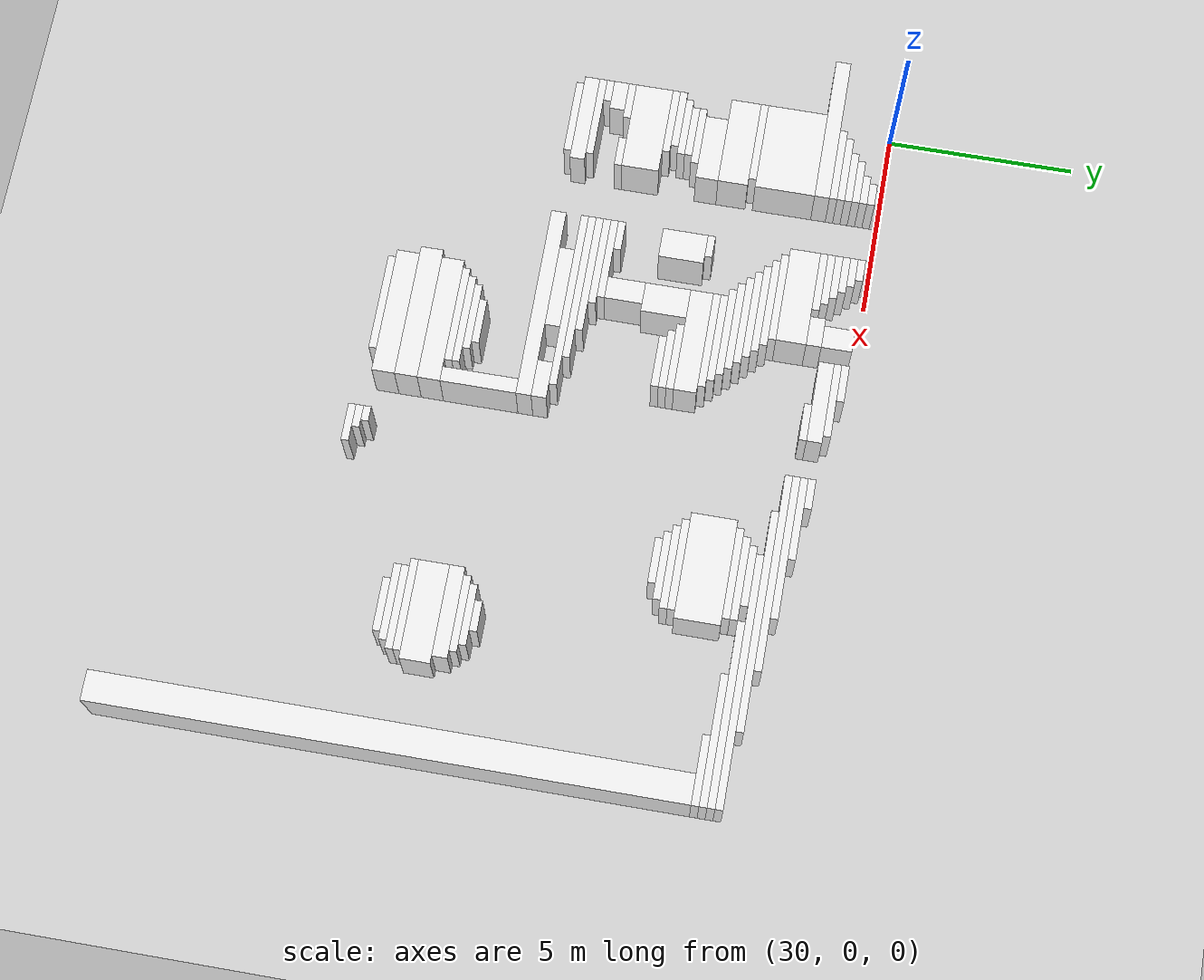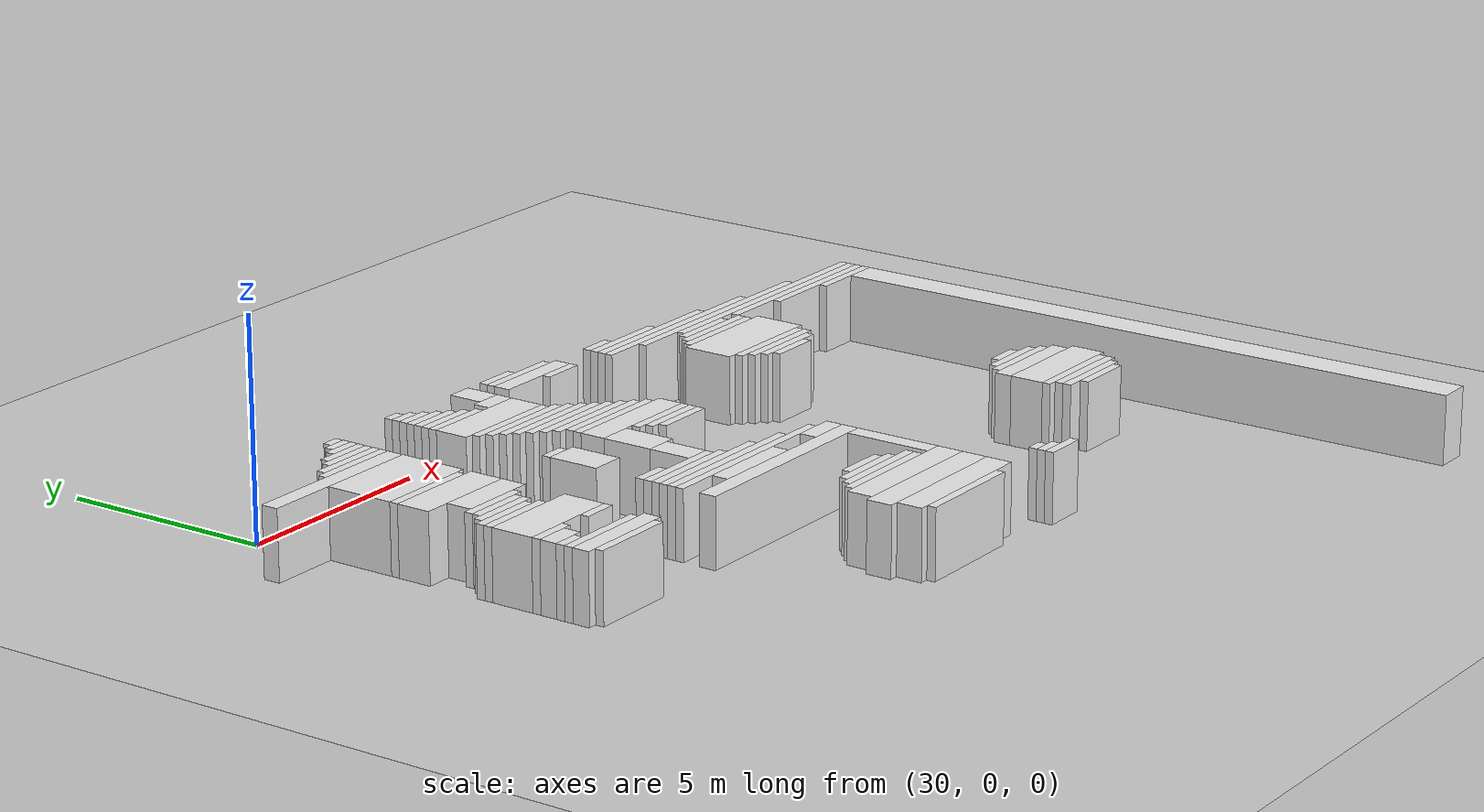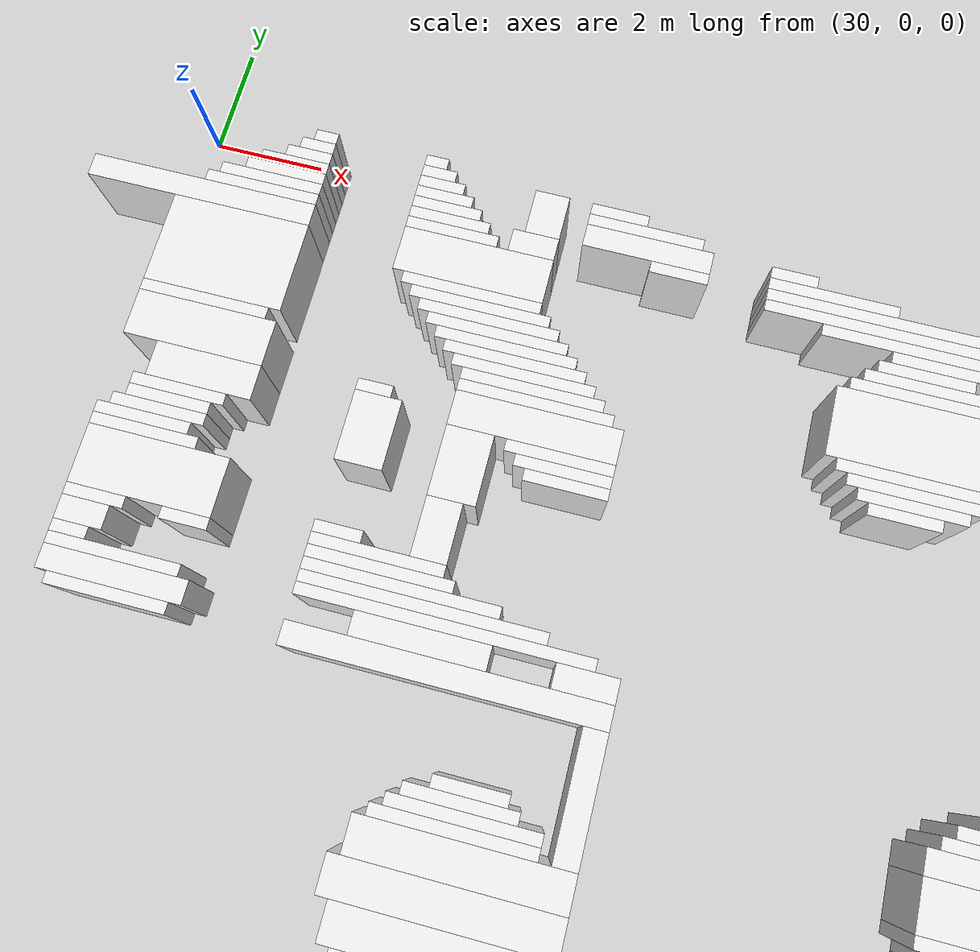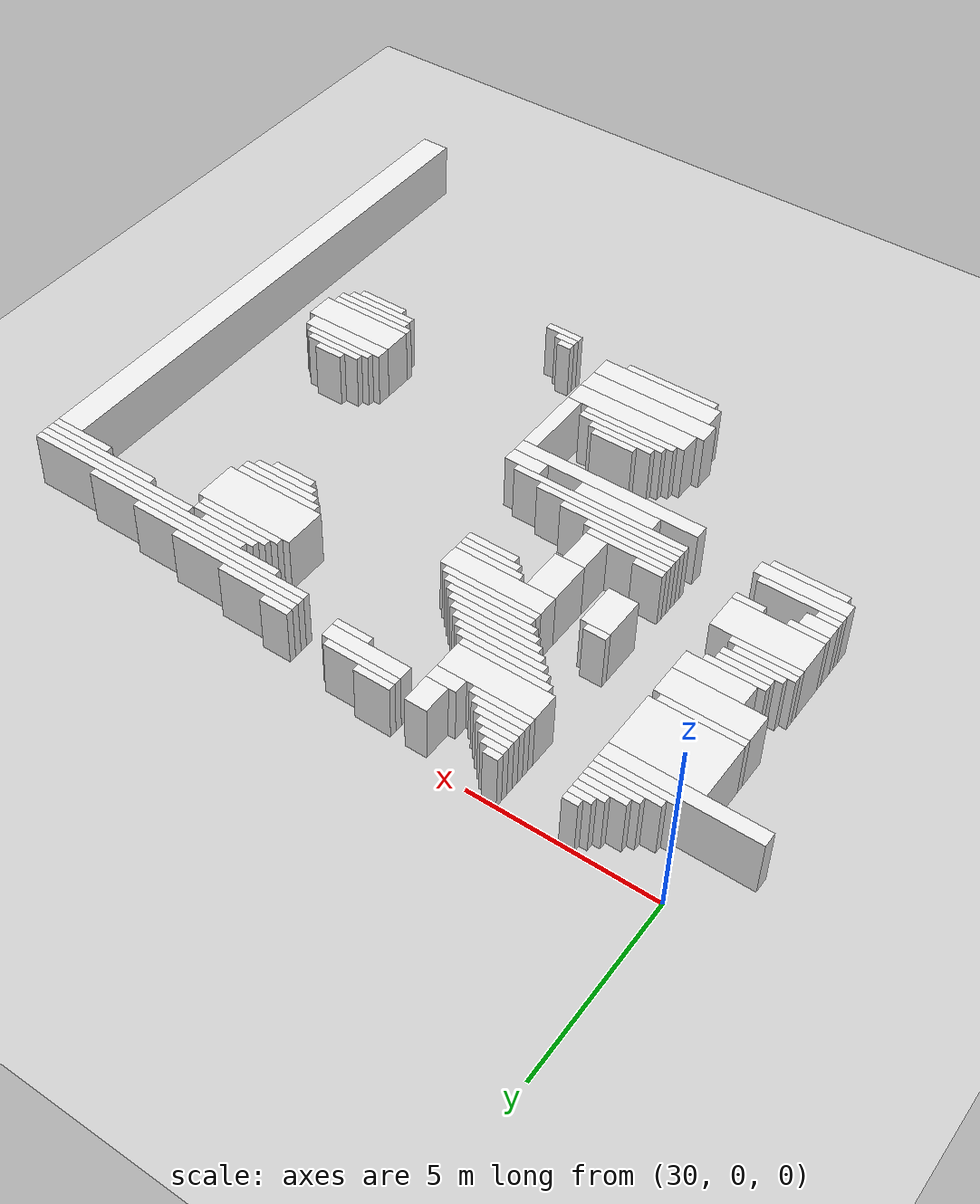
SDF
<sdf version="1.7">
 <world name="default">
  <model name="ground_plane">
   <static>1</static>
   <link name="link">
    <collision name="collision">
     <geometry><plane><normal>0 0 1</normal><size>120 120</size></plane></geometry>
    </collision>
    <visual name="visual">
     <geometry><plane><normal>0 0 1</normal><size>120 120</size></plane></geometry>
     <material>
      <script><uri>file://media/materials/scripts/gazebo.material</uri><name>Gazebo/Grey</name></script>
     </material>
    </visual>
   </link>
  </model>
  <model name="random_complex_02_model">
   <static>1</static>
   <link name="obs_1978">
    <pose>32.4000 -0.1000 0.8000 0 0 0</pose>
    <collision name="obs_1978_col"><geometry><box><size>0.4000 0.2000 1.6000</size></box></geometry></collision>
    <visual name="obs_1978_vis">
     <geometry><box><size>0.4000 0.2000 1.6000</size></box></geometry>
     <material>
      <script><uri>file://media/materials/scripts/gazebo.material</uri><name>Gazebo/White</name></script>
     </material>
    </visual>
   </link>
   <link name="obs_1979">
    <pose>34.4000 -0.1000 0.8000 0 0 0</pose>
    <collision name="obs_1979_col"><geometry><box><size>0.4000 0.2000 1.6000</size></box></geometry></collision>
    <visual name="obs_1979_vis">
     <geometry><box><size>0.4000 0.2000 1.6000</size></box></geometry>
     <material>
      <script><uri>file://media/materials/scripts/gazebo.material</uri><name>Gazebo/White</name></script>
     </material>
    </visual>
   </link>
   <link name="obs_1985">
    <pose>32.3000 -0.3000 0.8000 0 0 0</pose>
    <collision name="obs_1985_col"><geometry><box><size>0.6000 0.2000 1.6000</size></box></geometry></collision>
    <visual name="obs_1985_vis">
     <geometry><box><size>0.6000 0.2000 1.6000</size></box></geometry>
     <material>
      <script><uri>file://media/materials/scripts/gazebo.material</uri><name>Gazebo/White</name></script>
     </material>
    </visual>
   </link>
   <link name="obs_1986">
    <pose>34.5000 -0.3000 0.8000 0 0 0</pose>
    <collision name="obs_1986_col"><geometry><box><size>0.6000 0.2000 1.6000</size></box></geometry></collision>
    <visual name="obs_1986_vis">
     <geometry><box><size>0.6000 0.2000 1.6000</size></box></geometry>
     <material>
      <script><uri>file://media/materials/scripts/gazebo.material</uri><name>Gazebo/White</name></script>
     </material>
    </visual>
   </link>
   <link name="obs_1987">
    <pose>37.7000 -0.3000 0.8000 0 0 0</pose>
    <collision name="obs_1987_col"><geometry><box><size>1.0000 0.2000 1.6000</size></box></geometry></collision>
    <visual name="obs_1987_vis">
     <geometry><box><size>1.0000 0.2000 1.6000</size></box></geometry>
     <material>
      <script><uri>file://media/materials/scripts/gazebo.material</uri><name>Gazebo/White</name></script>
     </material>
    </visual>
   </link>
   <link name="obs_1992">
    <pose>32.2000 -0.5000 0.8000 0 0 0</pose>
    <collision name="obs_1992_col"><geometry><box><size>0.8000 0.2000 1.6000</size></box></geometry></collision>
    <visual name="obs_1992_vis">
     <geometry><box><size>0.8000 0.2000 1.6000</size></box></geometry>
     <material>
      <script><uri>file://media/materials/scripts/gazebo.material</uri><name>Gazebo/White</name></script>
     </material>
    </visual>
   </link>
   <link name="obs_1993">
    <pose>34.6000 -0.5000 0.8000 0 0 0</pose>
    <collision name="obs_1993_col"><geometry><box><size>0.8000 0.2000 1.6000</size></box></geometry></collision>
    <visual name="obs_1993_vis">
     <geometry><box><size>0.8000 0.2000 1.6000</size></box></geometry>
     <material>
      <script><uri>file://media/materials/scripts/gazebo.material</uri><name>Gazebo/White</name></script>
     </material>
    </visual>
   </link>
   <link name="obs_1994">
    <pose>38.2000 -0.5000 0.8000 0 0 0</pose>
    <collision name="obs_1994_col"><geometry><box><size>2.0000 0.2000 1.6000</size></box></geometry></collision>
    <visual name="obs_1994_vis">
     <geometry><box><size>2.0000 0.2000 1.6000</size></box></geometry>
     <material>
      <script><uri>file://media/materials/scripts/gazebo.material</uri><name>Gazebo/White</name></script>
     </material>
    </visual>
   </link>
   <link name="obs_2000">
    <pose>32.0000 -0.7000 0.8000 0 0 0</pose>
    <collision name="obs_2000_col"><geometry><box><size>1.2000 0.2000 1.6000</size></box></geometry></collision>
    <visual name="obs_2000_vis">
     <geometry><box><size>1.2000 0.2000 1.6000</size></box></geometry>
     <material>
      <script><uri>file://media/materials/scripts/gazebo.material</uri><name>Gazebo/White</name></script>
     </material>
    </visual>
   </link>
   <link name="obs_2001">
    <pose>34.7000 -0.7000 0.8000 0 0 0</pose>
    <collision name="obs_2001_col"><geometry><box><size>1.0000 0.2000 1.6000</size></box></geometry></collision>
    <visual name="obs_2001_vis">
     <geometry><box><size>1.0000 0.2000 1.6000</size></box></geometry>
     <material>
      <script><uri>file://media/materials/scripts/gazebo.material</uri><name>Gazebo/White</name></script>
     </material>
    </visual>
   </link>
   <link name="obs_2002">
    <pose>40.8000 -0.7000 0.8000 0 0 0</pose>
    <collision name="obs_2002_col"><geometry><box><size>0.8000 0.2000 1.6000</size></box></geometry></collision>
    <visual name="obs_2002_vis">
     <geometry><box><size>0.8000 0.2000 1.6000</size></box></geometry>
     <material>
      <script><uri>file://media/materials/scripts/gazebo.material</uri><name>Gazebo/White</name></script>
     </material>
    </visual>
   </link>
   <link name="obs_2005">
    <pose>36.5000 -0.6000 0.8000 0 0 0</pose>
    <collision name="obs_2005_col"><geometry><box><size>0.6000 0.8000 1.6000</size></box></geometry></collision>
    <visual name="obs_2005_vis">
     <geometry><box><size>0.6000 0.8000 1.6000</size></box></geometry>
     <material>
      <script><uri>file://media/materials/scripts/gazebo.material</uri><name>Gazebo/White</name></script>
     </material>
    </visual>
   </link>
   <link name="obs_2006">
    <pose>38.3000 -0.8000 0.8000 0 0 0</pose>
    <collision name="obs_2006_col"><geometry><box><size>2.2000 0.4000 1.6000</size></box></geometry></collision>
    <visual name="obs_2006_vis">
     <geometry><box><size>2.2000 0.4000 1.6000</size></box></geometry>
     <material>
      <script><uri>file://media/materials/scripts/gazebo.material</uri><name>Gazebo/White</name></script>
     </material>
    </visual>
   </link>
   <link name="obs_2012">
    <pose>31.9000 -0.9000 0.8000 0 0 0</pose>
    <collision name="obs_2012_col"><geometry><box><size>1.4000 0.2000 1.6000</size></box></geometry></collision>
    <visual name="obs_2012_vis">
     <geometry><box><size>1.4000 0.2000 1.6000</size></box></geometry>
     <material>
      <script><uri>file://media/materials/scripts/gazebo.material</uri><name>Gazebo/White</name></script>
     </material>
    </visual>
   </link>
   <link name="obs_2013">
    <pose>34.8000 -0.9000 0.8000 0 0 0</pose>
    <collision name="obs_2013_col"><geometry><box><size>1.2000 0.2000 1.6000</size></box></geometry></collision>
    <visual name="obs_2013_vis">
     <geometry><box><size>1.2000 0.2000 1.6000</size></box></geometry>
     <material>
      <script><uri>file://media/materials/scripts/gazebo.material</uri><name>Gazebo/White</name></script>
     </material>
    </visual>
   </link>
   <link name="obs_2014">
    <pose>41.5000 -0.9000 0.8000 0 0 0</pose>
    <collision name="obs_2014_col"><geometry><box><size>2.2000 0.2000 1.6000</size></box></geometry></collision>
    <visual name="obs_2014_vis">
     <geometry><box><size>2.2000 0.2000 1.6000</size></box></geometry>
     <material>
      <script><uri>file://media/materials/scripts/gazebo.material</uri><name>Gazebo/White</name></script>
     </material>
    </visual>
   </link>
   <link name="obs_2021">
    <pose>31.7000 -1.1000 0.8000 0 0 0</pose>
    <collision name="obs_2021_col"><geometry><box><size>1.8000 0.2000 1.6000</size></box></geometry></collision>
    <visual name="obs_2021_vis">
     <geometry><box><size>1.8000 0.2000 1.6000</size></box></geometry>
     <material>
      <script><uri>file://media/materials/scripts/gazebo.material</uri><name>Gazebo/White</name></script>
     </material>
    </visual>
   </link>
   <link name="obs_2022">
    <pose>34.9000 -1.1000 0.8000 0 0 0</pose>
    <collision name="obs_2022_col"><geometry><box><size>1.4000 0.2000 1.6000</size></box></geometry></collision>
    <visual name="obs_2022_vis">
     <geometry><box><size>1.4000 0.2000 1.6000</size></box></geometry>
     <material>
      <script><uri>file://media/materials/scripts/gazebo.material</uri><name>Gazebo/White</name></script>
     </material>
    </visual>
   </link>
   <link name="obs_2023">
    <pose>38.9000 -1.1000 0.8000 0 0 0</pose>
    <collision name="obs_2023_col"><geometry><box><size>1.0000 0.2000 1.6000</size></box></geometry></collision>
    <visual name="obs_2023_vis">
     <geometry><box><size>1.0000 0.2000 1.6000</size></box></geometry>
     <material>
      <script><uri>file://media/materials/scripts/gazebo.material</uri><name>Gazebo/White</name></script>
     </material>
    </visual>
   </link>
   <link name="obs_2024">
    <pose>42.3000 -1.1000 0.8000 0 0 0</pose>
    <collision name="obs_2024_col"><geometry><box><size>3.8000 0.2000 1.6000</size></box></geometry></collision>
    <visual name="obs_2024_vis">
     <geometry><box><size>3.8000 0.2000 1.6000</size></box></geometry>
     <material>
      <script><uri>file://media/materials/scripts/gazebo.material</uri><name>Gazebo/White</name></script>
     </material>
    </visual>
   </link>
   <link name="obs_2026">
    <pose>36.4000 -1.2000 0.8000 0 0 0</pose>
    <collision name="obs_2026_col"><geometry><box><size>0.8000 0.4000 1.6000</size></box></geometry></collision>
    <visual name="obs_2026_vis">
     <geometry><box><size>0.8000 0.4000 1.6000</size></box></geometry>
     <material>
      <script><uri>file://media/materials/scripts/gazebo.material</uri><name>Gazebo/White</name></script>
     </material>
    </visual>
   </link>
   <link name="obs_2033">
    <pose>31.6000 -1.3000 0.8000 0 0 0</pose>
    <collision name="obs_2033_col"><geometry><box><size>2.0000 0.2000 1.6000</size></box></geometry></collision>
    <visual name="obs_2033_vis">
     <geometry><box><size>2.0000 0.2000 1.6000</size></box></geometry>
     <material>
      <script><uri>file://media/materials/scripts/gazebo.material</uri><name>Gazebo/White</name></script>
     </material>
    </visual>
   </link>
   <link name="obs_2034">
    <pose>35.0000 -1.3000 0.8000 0 0 0</pose>
    <collision name="obs_2034_col"><geometry><box><size>1.6000 0.2000 1.6000</size></box></geometry></collision>
    <visual name="obs_2034_vis">
     <geometry><box><size>1.6000 0.2000 1.6000</size></box></geometry>
     <material>
      <script><uri>file://media/materials/scripts/gazebo.material</uri><name>Gazebo/White</name></script>
     </material>
    </visual>
   </link>
   <link name="obs_2035">
    <pose>43.0000 -1.3000 0.8000 0 0 0</pose>
    <collision name="obs_2035_col"><geometry><box><size>5.2000 0.2000 1.6000</size></box></geometry></collision>
    <visual name="obs_2035_vis">
     <geometry><box><size>5.2000 0.2000 1.6000</size></box></geometry>
     <material>
      <script><uri>file://media/materials/scripts/gazebo.material</uri><name>Gazebo/White</name></script>
     </material>
    </visual>
   </link>
   <link name="obs_2042">
    <pose>44.3000 -1.5000 0.8000 0 0 0</pose>
    <collision name="obs_2042_col"><geometry><box><size>5.8000 0.2000 1.6000</size></box></geometry></collision>
    <visual name="obs_2042_vis">
     <geometry><box><size>5.8000 0.2000 1.6000</size></box></geometry>
     <material>
      <script><uri>file://media/materials/scripts/gazebo.material</uri><name>Gazebo/White</name></script>
     </material>
    </visual>
   </link>
   <link name="obs_2043">
    <pose>30.6000 -1.6000 0.8000 0 0 0</pose>
    <collision name="obs_2043_col"><geometry><box><size>4.0000 0.4000 1.6000</size></box></geometry></collision>
    <visual name="obs_2043_vis">
     <geometry><box><size>4.0000 0.4000 1.6000</size></box></geometry>
     <material>
      <script><uri>file://media/materials/scripts/gazebo.material</uri><name>Gazebo/White</name></script>
     </material>
    </visual>
   </link>
   <link name="obs_2047">
    <pose>45.9000 -1.7000 0.8000 0 0 0</pose>
    <collision name="obs_2047_col"><geometry><box><size>6.6000 0.2000 1.6000</size></box></geometry></collision>
    <visual name="obs_2047_vis">
     <geometry><box><size>6.6000 0.2000 1.6000</size></box></geometry>
     <material>
      <script><uri>file://media/materials/scripts/gazebo.material</uri><name>Gazebo/White</name></script>
     </material>
    </visual>
   </link>
   <link name="obs_2058">
    <pose>43.2000 -1.9000 0.8000 0 0 0</pose>
    <collision name="obs_2058_col"><geometry><box><size>1.6000 0.2000 1.6000</size></box></geometry></collision>
    <visual name="obs_2058_vis">
     <geometry><box><size>1.6000 0.2000 1.6000</size></box></geometry>
     <material>
      <script><uri>file://media/materials/scripts/gazebo.material</uri><name>Gazebo/White</name></script>
     </material>
    </visual>
   </link>
   <link name="obs_2059">
    <pose>46.8000 -1.9000 0.8000 0 0 0</pose>
    <collision name="obs_2059_col"><geometry><box><size>4.8000 0.2000 1.6000</size></box></geometry></collision>
    <visual name="obs_2059_vis">
     <geometry><box><size>4.8000 0.2000 1.6000</size></box></geometry>
     <material>
      <script><uri>file://media/materials/scripts/gazebo.material</uri><name>Gazebo/White</name></script>
     </material>
    </visual>
   </link>
   <link name="obs_2060">
    <pose>35.5000 -1.8000 0.8000 0 0 0</pose>
    <collision name="obs_2060_col"><geometry><box><size>2.6000 0.8000 1.6000</size></box></geometry></collision>
    <visual name="obs_2060_vis">
     <geometry><box><size>2.6000 0.8000 1.6000</size></box></geometry>
     <material>
      <script><uri>file://media/materials/scripts/gazebo.material</uri><name>Gazebo/White</name></script>
     </material>
    </visual>
   </link>
   <link name="obs_2067">
    <pose>43.3000 -2.1000 0.8000 0 0 0</pose>
    <collision name="obs_2067_col"><geometry><box><size>2.2000 0.2000 1.6000</size></box></geometry></collision>
    <visual name="obs_2067_vis">
     <geometry><box><size>2.2000 0.2000 1.6000</size></box></geometry>
     <material>
      <script><uri>file://media/materials/scripts/gazebo.material</uri><name>Gazebo/White</name></script>
     </material>
    </visual>
   </link>
   <link name="obs_2068">
    <pose>47.5000 -2.1000 0.8000 0 0 0</pose>
    <collision name="obs_2068_col"><geometry><box><size>3.4000 0.2000 1.6000</size></box></geometry></collision>
    <visual name="obs_2068_vis">
     <geometry><box><size>3.4000 0.2000 1.6000</size></box></geometry>
     <material>
      <script><uri>file://media/materials/scripts/gazebo.material</uri><name>Gazebo/White</name></script>
     </material>
    </visual>
   </link>
   <link name="obs_2073">
    <pose>35.6000 -2.3000 0.8000 0 0 0</pose>
    <collision name="obs_2073_col"><geometry><box><size>2.4000 0.2000 1.6000</size></box></geometry></collision>
    <visual name="obs_2073_vis">
     <geometry><box><size>2.4000 0.2000 1.6000</size></box></geometry>
     <material>
      <script><uri>file://media/materials/scripts/gazebo.material</uri><name>Gazebo/White</name></script>
     </material>
    </visual>
   </link>
   <link name="obs_2074">
    <pose>43.2000 -2.3000 0.8000 0 0 0</pose>
    <collision name="obs_2074_col"><geometry><box><size>2.4000 0.2000 1.6000</size></box></geometry></collision>
    <visual name="obs_2074_vis">
     <geometry><box><size>2.4000 0.2000 1.6000</size></box></geometry>
     <material>
      <script><uri>file://media/materials/scripts/gazebo.material</uri><name>Gazebo/White</name></script>
     </material>
    </visual>
   </link>
   <link name="obs_2075">
    <pose>48.3000 -2.3000 0.8000 0 0 0</pose>
    <collision name="obs_2075_col"><geometry><box><size>1.8000 0.2000 1.6000</size></box></geometry></collision>
    <visual name="obs_2075_vis">
     <geometry><box><size>1.8000 0.2000 1.6000</size></box></geometry>
     <material>
      <script><uri>file://media/materials/scripts/gazebo.material</uri><name>Gazebo/White</name></script>
     </material>
    </visual>
   </link>
   <link name="obs_2081">
    <pose>35.8000 -2.5000 0.8000 0 0 0</pose>
    <collision name="obs_2081_col"><geometry><box><size>2.4000 0.2000 1.6000</size></box></geometry></collision>
    <visual name="obs_2081_vis">
     <geometry><box><size>2.4000 0.2000 1.6000</size></box></geometry>
     <material>
      <script><uri>file://media/materials/scripts/gazebo.material</uri><name>Gazebo/White</name></script>
     </material>
    </visual>
   </link>
   <link name="obs_2090">
    <pose>36.0000 -2.7000 0.8000 0 0 0</pose>
    <collision name="obs_2090_col"><geometry><box><size>2.4000 0.2000 1.6000</size></box></geometry></collision>
    <visual name="obs_2090_vis">
     <geometry><box><size>2.4000 0.2000 1.6000</size></box></geometry>
     <material>
      <script><uri>file://media/materials/scripts/gazebo.material</uri><name>Gazebo/White</name></script>
     </material>
    </visual>
   </link>
   <link name="obs_2095">
    <pose>36.2000 -2.9000 0.8000 0 0 0</pose>
    <collision name="obs_2095_col"><geometry><box><size>2.4000 0.2000 1.6000</size></box></geometry></collision>
    <visual name="obs_2095_vis">
     <geometry><box><size>2.4000 0.2000 1.6000</size></box></geometry>
     <material>
      <script><uri>file://media/materials/scripts/gazebo.material</uri><name>Gazebo/White</name></script>
     </material>
    </visual>
   </link>
   <link name="obs_2101">
    <pose>36.4000 -3.1000 0.8000 0 0 0</pose>
    <collision name="obs_2101_col"><geometry><box><size>2.4000 0.2000 1.6000</size></box></geometry></collision>
    <visual name="obs_2101_vis">
     <geometry><box><size>2.4000 0.2000 1.6000</size></box></geometry>
     <material>
      <script><uri>file://media/materials/scripts/gazebo.material</uri><name>Gazebo/White</name></script>
     </material>
    </visual>
   </link>
   <link name="obs_2102">
    <pose>31.4000 -2.6000 0.8000 0 0 0</pose>
    <collision name="obs_2102_col"><geometry><box><size>2.4000 1.6000 1.6000</size></box></geometry></collision>
    <visual name="obs_2102_vis">
     <geometry><box><size>2.4000 1.6000 1.6000</size></box></geometry>
     <material>
      <script><uri>file://media/materials/scripts/gazebo.material</uri><name>Gazebo/White</name></script>
     </material>
    </visual>
   </link>
   <link name="obs_2111">
    <pose>36.6000 -3.3000 0.8000 0 0 0</pose>
    <collision name="obs_2111_col"><geometry><box><size>2.4000 0.2000 1.6000</size></box></geometry></collision>
    <visual name="obs_2111_vis">
     <geometry><box><size>2.4000 0.2000 1.6000</size></box></geometry>
     <material>
      <script><uri>file://media/materials/scripts/gazebo.material</uri><name>Gazebo/White</name></script>
     </material>
    </visual>
   </link>
   <link name="obs_2112">
    <pose>43.2000 -3.0000 0.8000 0 0 0</pose>
    <collision name="obs_2112_col"><geometry><box><size>2.8000 1.2000 1.6000</size></box></geometry></collision>
    <visual name="obs_2112_vis">
     <geometry><box><size>2.8000 1.2000 1.6000</size></box></geometry>
     <material>
      <script><uri>file://media/materials/scripts/gazebo.material</uri><name>Gazebo/White</name></script>
     </material>
    </visual>
   </link>
   <link name="obs_2121">
    <pose>31.3000 -3.5000 0.8000 0 0 0</pose>
    <collision name="obs_2121_col"><geometry><box><size>2.2000 0.2000 1.6000</size></box></geometry></collision>
    <visual name="obs_2121_vis">
     <geometry><box><size>2.2000 0.2000 1.6000</size></box></geometry>
     <material>
      <script><uri>file://media/materials/scripts/gazebo.material</uri><name>Gazebo/White</name></script>
     </material>
    </visual>
   </link>
   <link name="obs_2122">
    <pose>36.8000 -3.5000 0.8000 0 0 0</pose>
    <collision name="obs_2122_col"><geometry><box><size>2.4000 0.2000 1.6000</size></box></geometry></collision>
    <visual name="obs_2122_vis">
     <geometry><box><size>2.4000 0.2000 1.6000</size></box></geometry>
     <material>
      <script><uri>file://media/materials/scripts/gazebo.material</uri><name>Gazebo/White</name></script>
     </material>
    </visual>
   </link>
   <link name="obs_2131">
    <pose>37.0000 -3.7000 0.8000 0 0 0</pose>
    <collision name="obs_2131_col"><geometry><box><size>2.4000 0.2000 1.6000</size></box></geometry></collision>
    <visual name="obs_2131_vis">
     <geometry><box><size>2.4000 0.2000 1.6000</size></box></geometry>
     <material>
      <script><uri>file://media/materials/scripts/gazebo.material</uri><name>Gazebo/White</name></script>
     </material>
    </visual>
   </link>
   <link name="obs_2132">
    <pose>43.2000 -3.7000 0.8000 0 0 0</pose>
    <collision name="obs_2132_col"><geometry><box><size>2.4000 0.2000 1.6000</size></box></geometry></collision>
    <visual name="obs_2132_vis">
     <geometry><box><size>2.4000 0.2000 1.6000</size></box></geometry>
     <material>
      <script><uri>file://media/materials/scripts/gazebo.material</uri><name>Gazebo/White</name></script>
     </material>
    </visual>
   </link>
   <link name="obs_2141">
    <pose>37.1000 -3.9000 0.8000 0 0 0</pose>
    <collision name="obs_2141_col"><geometry><box><size>2.6000 0.2000 1.6000</size></box></geometry></collision>
    <visual name="obs_2141_vis">
     <geometry><box><size>2.6000 0.2000 1.6000</size></box></geometry>
     <material>
      <script><uri>file://media/materials/scripts/gazebo.material</uri><name>Gazebo/White</name></script>
     </material>
    </visual>
   </link>
   <link name="obs_2142">
    <pose>43.3000 -3.9000 0.8000 0 0 0</pose>
    <collision name="obs_2142_col"><geometry><box><size>2.2000 0.2000 1.6000</size></box></geometry></collision>
    <visual name="obs_2142_vis">
     <geometry><box><size>2.2000 0.2000 1.6000</size></box></geometry>
     <material>
      <script><uri>file://media/materials/scripts/gazebo.material</uri><name>Gazebo/White</name></script>
     </material>
    </visual>
   </link>
   <link name="obs_2152">
    <pose>43.3000 -4.1000 0.8000 0 0 0</pose>
    <collision name="obs_2152_col"><geometry><box><size>1.8000 0.2000 1.6000</size></box></geometry></collision>
    <visual name="obs_2152_vis">
     <geometry><box><size>1.8000 0.2000 1.6000</size></box></geometry>
     <material>
      <script><uri>file://media/materials/scripts/gazebo.material</uri><name>Gazebo/White</name></script>
     </material>
    </visual>
   </link>
   <link name="obs_2153">
    <pose>31.4000 -4.0000 0.8000 0 0 0</pose>
    <collision name="obs_2153_col"><geometry><box><size>2.4000 0.8000 1.6000</size></box></geometry></collision>
    <visual name="obs_2153_vis">
     <geometry><box><size>2.4000 0.8000 1.6000</size></box></geometry>
     <material>
      <script><uri>file://media/materials/scripts/gazebo.material</uri><name>Gazebo/White</name></script>
     </material>
    </visual>
   </link>
   <link name="obs_2162">
    <pose>34.5000 -4.3000 0.8000 0 0 0</pose>
    <collision name="obs_2162_col"><geometry><box><size>0.6000 0.2000 1.6000</size></box></geometry></collision>
    <visual name="obs_2162_vis">
     <geometry><box><size>0.6000 0.2000 1.6000</size></box></geometry>
     <material>
      <script><uri>file://media/materials/scripts/gazebo.material</uri><name>Gazebo/White</name></script>
     </material>
    </visual>
   </link>
   <link name="obs_2163">
    <pose>43.2000 -4.3000 0.8000 0 0 0</pose>
    <collision name="obs_2163_col"><geometry><box><size>1.2000 0.2000 1.6000</size></box></geometry></collision>
    <visual name="obs_2163_vis">
     <geometry><box><size>1.2000 0.2000 1.6000</size></box></geometry>
     <material>
      <script><uri>file://media/materials/scripts/gazebo.material</uri><name>Gazebo/White</name></script>
     </material>
    </visual>
   </link>
   <link name="obs_2165">
    <pose>37.2000 -4.3000 0.8000 0 0 0</pose>
    <collision name="obs_2165_col"><geometry><box><size>2.8000 0.6000 1.6000</size></box></geometry></collision>
    <visual name="obs_2165_vis">
     <geometry><box><size>2.8000 0.6000 1.6000</size></box></geometry>
     <material>
      <script><uri>file://media/materials/scripts/gazebo.material</uri><name>Gazebo/White</name></script>
     </material>
    </visual>
   </link>
   <link name="obs_2176">
    <pose>37.7000 -4.7000 0.8000 0 0 0</pose>
    <collision name="obs_2176_col"><geometry><box><size>1.8000 0.2000 1.6000</size></box></geometry></collision>
    <visual name="obs_2176_vis">
     <geometry><box><size>1.8000 0.2000 1.6000</size></box></geometry>
     <material>
      <script><uri>file://media/materials/scripts/gazebo.material</uri><name>Gazebo/White</name></script>
     </material>
    </visual>
   </link>
   <link name="obs_2177">
    <pose>31.7000 -4.7000 0.8000 0 0 0</pose>
    <collision name="obs_2177_col"><geometry><box><size>1.8000 0.6000 1.6000</size></box></geometry></collision>
    <visual name="obs_2177_vis">
     <geometry><box><size>1.8000 0.6000 1.6000</size></box></geometry>
     <material>
      <script><uri>file://media/materials/scripts/gazebo.material</uri><name>Gazebo/White</name></script>
     </material>
    </visual>
   </link>
   <link name="obs_2185">
    <pose>37.8000 -4.9000 0.8000 0 0 0</pose>
    <collision name="obs_2185_col"><geometry><box><size>1.6000 0.2000 1.6000</size></box></geometry></collision>
    <visual name="obs_2185_vis">
     <geometry><box><size>1.6000 0.2000 1.6000</size></box></geometry>
     <material>
      <script><uri>file://media/materials/scripts/gazebo.material</uri><name>Gazebo/White</name></script>
     </material>
    </visual>
   </link>
   <link name="obs_2192">
    <pose>31.4000 -5.1000 0.8000 0 0 0</pose>
    <collision name="obs_2192_col"><geometry><box><size>1.6000 0.2000 1.6000</size></box></geometry></collision>
    <visual name="obs_2192_vis">
     <geometry><box><size>1.6000 0.2000 1.6000</size></box></geometry>
     <material>
      <script><uri>file://media/materials/scripts/gazebo.material</uri><name>Gazebo/White</name></script>
     </material>
    </visual>
   </link>
   <link name="obs_2193">
    <pose>37.9000 -5.1000 0.8000 0 0 0</pose>
    <collision name="obs_2193_col"><geometry><box><size>1.4000 0.2000 1.6000</size></box></geometry></collision>
    <visual name="obs_2193_vis">
     <geometry><box><size>1.4000 0.2000 1.6000</size></box></geometry>
     <material>
      <script><uri>file://media/materials/scripts/gazebo.material</uri><name>Gazebo/White</name></script>
     </material>
    </visual>
   </link>
   <link name="obs_2203">
    <pose>31.3000 -5.3000 0.8000 0 0 0</pose>
    <collision name="obs_2203_col"><geometry><box><size>1.4000 0.2000 1.6000</size></box></geometry></collision>
    <visual name="obs_2203_vis">
     <geometry><box><size>1.4000 0.2000 1.6000</size></box></geometry>
     <material>
      <script><uri>file://media/materials/scripts/gazebo.material</uri><name>Gazebo/White</name></script>
     </material>
    </visual>
   </link>
   <link name="obs_2205">
    <pose>34.6000 -5.0000 0.8000 0 0 0</pose>
    <collision name="obs_2205_col"><geometry><box><size>0.8000 1.2000 1.6000</size></box></geometry></collision>
    <visual name="obs_2205_vis">
     <geometry><box><size>0.8000 1.2000 1.6000</size></box></geometry>
     <material>
      <script><uri>file://media/materials/scripts/gazebo.material</uri><name>Gazebo/White</name></script>
     </material>
    </visual>
   </link>
   <link name="obs_2212">
    <pose>31.2000 -5.5000 0.8000 0 0 0</pose>
    <collision name="obs_2212_col"><geometry><box><size>1.6000 0.2000 1.6000</size></box></geometry></collision>
    <visual name="obs_2212_vis">
     <geometry><box><size>1.6000 0.2000 1.6000</size></box></geometry>
     <material>
      <script><uri>file://media/materials/scripts/gazebo.material</uri><name>Gazebo/White</name></script>
     </material>
    </visual>
   </link>
   <link name="obs_2213">
    <pose>36.2000 -5.2000 0.8000 0 0 0</pose>
    <collision name="obs_2213_col"><geometry><box><size>0.8000 1.2000 1.6000</size></box></geometry></collision>
    <visual name="obs_2213_vis">
     <geometry><box><size>0.8000 1.2000 1.6000</size></box></geometry>
     <material>
      <script><uri>file://media/materials/scripts/gazebo.material</uri><name>Gazebo/White</name></script>
     </material>
    </visual>
   </link>
   <link name="obs_2220">
    <pose>31.0000 -5.7000 0.8000 0 0 0</pose>
    <collision name="obs_2220_col"><geometry><box><size>1.6000 0.2000 1.6000</size></box></geometry></collision>
    <visual name="obs_2220_vis">
     <geometry><box><size>1.6000 0.2000 1.6000</size></box></geometry>
     <material>
      <script><uri>file://media/materials/scripts/gazebo.material</uri><name>Gazebo/White</name></script>
     </material>
    </visual>
   </link>
   <link name="obs_2232">
    <pose>31.1000 -5.9000 0.8000 0 0 0</pose>
    <collision name="obs_2232_col"><geometry><box><size>1.8000 0.2000 1.6000</size></box></geometry></collision>
    <visual name="obs_2232_vis">
     <geometry><box><size>1.8000 0.2000 1.6000</size></box></geometry>
     <material>
      <script><uri>file://media/materials/scripts/gazebo.material</uri><name>Gazebo/White</name></script>
     </material>
    </visual>
   </link>
   <link name="obs_2247">
    <pose>36.1000 -6.3000 0.8000 0 0 0</pose>
    <collision name="obs_2247_col"><geometry><box><size>0.6000 1.0000 1.6000</size></box></geometry></collision>
    <visual name="obs_2247_vis">
     <geometry><box><size>0.6000 1.0000 1.6000</size></box></geometry>
     <material>
      <script><uri>file://media/materials/scripts/gazebo.material</uri><name>Gazebo/White</name></script>
     </material>
    </visual>
   </link>
   <link name="obs_2252">
    <pose>34.6000 -6.7000 0.8000 0 0 0</pose>
    <collision name="obs_2252_col"><geometry><box><size>0.8000 0.2000 1.6000</size></box></geometry></collision>
    <visual name="obs_2252_vis">
     <geometry><box><size>0.8000 0.2000 1.6000</size></box></geometry>
     <material>
      <script><uri>file://media/materials/scripts/gazebo.material</uri><name>Gazebo/White</name></script>
     </material>
    </visual>
   </link>
   <link name="obs_2253">
    <pose>31.4000 -6.5000 0.8000 0 0 0</pose>
    <collision name="obs_2253_col"><geometry><box><size>2.4000 1.0000 1.6000</size></box></geometry></collision>
    <visual name="obs_2253_vis">
     <geometry><box><size>2.4000 1.0000 1.6000</size></box></geometry>
     <material>
      <script><uri>file://media/materials/scripts/gazebo.material</uri><name>Gazebo/White</name></script>
     </material>
    </visual>
   </link>
   <link name="obs_2258">
    <pose>35.3000 -6.9000 0.8000 0 0 0</pose>
    <collision name="obs_2258_col"><geometry><box><size>2.2000 0.2000 1.6000</size></box></geometry></collision>
    <visual name="obs_2258_vis">
     <geometry><box><size>2.2000 0.2000 1.6000</size></box></geometry>
     <material>
      <script><uri>file://media/materials/scripts/gazebo.material</uri><name>Gazebo/White</name></script>
     </material>
    </visual>
   </link>
   <link name="obs_2264">
    <pose>30.7000 -7.1000 0.8000 0 0 0</pose>
    <collision name="obs_2264_col"><geometry><box><size>1.0000 0.2000 1.6000</size></box></geometry></collision>
    <visual name="obs_2264_vis">
     <geometry><box><size>1.0000 0.2000 1.6000</size></box></geometry>
     <material>
      <script><uri>file://media/materials/scripts/gazebo.material</uri><name>Gazebo/White</name></script>
     </material>
    </visual>
   </link>
   <link name="obs_2265">
    <pose>32.2000 -7.1000 0.8000 0 0 0</pose>
    <collision name="obs_2265_col"><geometry><box><size>0.8000 0.2000 1.6000</size></box></geometry></collision>
    <visual name="obs_2265_vis">
     <geometry><box><size>0.8000 0.2000 1.6000</size></box></geometry>
     <material>
      <script><uri>file://media/materials/scripts/gazebo.material</uri><name>Gazebo/White</name></script>
     </material>
    </visual>
   </link>
   <link name="obs_2266">
    <pose>35.4000 -7.1000 0.8000 0 0 0</pose>
    <collision name="obs_2266_col"><geometry><box><size>2.4000 0.2000 1.6000</size></box></geometry></collision>
    <visual name="obs_2266_vis">
     <geometry><box><size>2.4000 0.2000 1.6000</size></box></geometry>
     <material>
      <script><uri>file://media/materials/scripts/gazebo.material</uri><name>Gazebo/White</name></script>
     </material>
    </visual>
   </link>
   <link name="obs_2271">
    <pose>35.8000 -7.3000 0.8000 0 0 0</pose>
    <collision name="obs_2271_col"><geometry><box><size>3.2000 0.2000 1.6000</size></box></geometry></collision>
    <visual name="obs_2271_vis">
     <geometry><box><size>3.2000 0.2000 1.6000</size></box></geometry>
     <material>
      <script><uri>file://media/materials/scripts/gazebo.material</uri><name>Gazebo/White</name></script>
     </material>
    </visual>
   </link>
   <link name="obs_2272">
    <pose>30.6000 -7.4000 0.8000 0 0 0</pose>
    <collision name="obs_2272_col"><geometry><box><size>0.8000 0.4000 1.6000</size></box></geometry></collision>
    <visual name="obs_2272_vis">
     <geometry><box><size>0.8000 0.4000 1.6000</size></box></geometry>
     <material>
      <script><uri>file://media/materials/scripts/gazebo.material</uri><name>Gazebo/White</name></script>
     </material>
    </visual>
   </link>
   <link name="obs_2278">
    <pose>36.2000 -7.5000 0.8000 0 0 0</pose>
    <collision name="obs_2278_col"><geometry><box><size>4.0000 0.2000 1.6000</size></box></geometry></collision>
    <visual name="obs_2278_vis">
     <geometry><box><size>4.0000 0.2000 1.6000</size></box></geometry>
     <material>
      <script><uri>file://media/materials/scripts/gazebo.material</uri><name>Gazebo/White</name></script>
     </material>
    </visual>
   </link>
   <link name="obs_2284">
    <pose>30.5000 -7.7000 0.8000 0 0 0</pose>
    <collision name="obs_2284_col"><geometry><box><size>0.6000 0.2000 1.6000</size></box></geometry></collision>
    <visual name="obs_2284_vis">
     <geometry><box><size>0.6000 0.2000 1.6000</size></box></geometry>
     <material>
      <script><uri>file://media/materials/scripts/gazebo.material</uri><name>Gazebo/White</name></script>
     </material>
    </visual>
   </link>
   <link name="obs_2285">
    <pose>36.6000 -7.7000 0.8000 0 0 0</pose>
    <collision name="obs_2285_col"><geometry><box><size>4.8000 0.2000 1.6000</size></box></geometry></collision>
    <visual name="obs_2285_vis">
     <geometry><box><size>4.8000 0.2000 1.6000</size></box></geometry>
     <material>
      <script><uri>file://media/materials/scripts/gazebo.material</uri><name>Gazebo/White</name></script>
     </material>
    </visual>
   </link>
   <link name="obs_2294">
    <pose>31.3000 -7.9000 0.8000 0 0 0</pose>
    <collision name="obs_2294_col"><geometry><box><size>2.2000 0.2000 1.6000</size></box></geometry></collision>
    <visual name="obs_2294_vis">
     <geometry><box><size>2.2000 0.2000 1.6000</size></box></geometry>
     <material>
      <script><uri>file://media/materials/scripts/gazebo.material</uri><name>Gazebo/White</name></script>
     </material>
    </visual>
   </link>
   <link name="obs_2295">
    <pose>36.3000 -8.0000 0.8000 0 0 0</pose>
    <collision name="obs_2295_col"><geometry><box><size>2.2000 0.4000 1.6000</size></box></geometry></collision>
    <visual name="obs_2295_vis">
     <geometry><box><size>2.2000 0.4000 1.6000</size></box></geometry>
     <material>
      <script><uri>file://media/materials/scripts/gazebo.material</uri><name>Gazebo/White</name></script>
     </material>
    </visual>
   </link>
   <link name="obs_2296">
    <pose>38.9000 -8.0000 0.8000 0 0 0</pose>
    <collision name="obs_2296_col"><geometry><box><size>1.0000 0.4000 1.6000</size></box></geometry></collision>
    <visual name="obs_2296_vis">
     <geometry><box><size>1.0000 0.4000 1.6000</size></box></geometry>
     <material>
      <script><uri>file://media/materials/scripts/gazebo.material</uri><name>Gazebo/White</name></script>
     </material>
    </visual>
   </link>
   <link name="obs_2302">
    <pose>31.4000 -8.2000 0.8000 0 0 0</pose>
    <collision name="obs_2302_col"><geometry><box><size>2.4000 0.4000 1.6000</size></box></geometry></collision>
    <visual name="obs_2302_vis">
     <geometry><box><size>2.4000 0.4000 1.6000</size></box></geometry>
     <material>
      <script><uri>file://media/materials/scripts/gazebo.material</uri><name>Gazebo/White</name></script>
     </material>
    </visual>
   </link>
   <link name="obs_2311">
    <pose>36.8000 -8.4000 0.8000 0 0 0</pose>
    <collision name="obs_2311_col"><geometry><box><size>5.2000 0.4000 1.6000</size></box></geometry></collision>
    <visual name="obs_2311_vis">
     <geometry><box><size>5.2000 0.4000 1.6000</size></box></geometry>
     <material>
      <script><uri>file://media/materials/scripts/gazebo.material</uri><name>Gazebo/White</name></script>
     </material>
    </visual>
   </link>
   <link name="obs_2315">
    <pose>31.4000 -8.5000 0.8000 0 0 0</pose>
    <collision name="obs_2315_col"><geometry><box><size>2.0000 0.2000 1.6000</size></box></geometry></collision>
    <visual name="obs_2315_vis">
     <geometry><box><size>2.0000 0.2000 1.6000</size></box></geometry>
     <material>
      <script><uri>file://media/materials/scripts/gazebo.material</uri><name>Gazebo/White</name></script>
     </material>
    </visual>
   </link>
   <link name="obs_2316">
    <pose>45.4000 -8.5000 0.8000 0 0 0</pose>
    <collision name="obs_2316_col"><geometry><box><size>0.8000 0.2000 1.6000</size></box></geometry></collision>
    <visual name="obs_2316_vis">
     <geometry><box><size>0.8000 0.2000 1.6000</size></box></geometry>
     <material>
      <script><uri>file://media/materials/scripts/gazebo.material</uri><name>Gazebo/White</name></script>
     </material>
    </visual>
   </link>
   <link name="obs_2320">
    <pose>45.4000 -8.7000 0.8000 0 0 0</pose>
    <collision name="obs_2320_col"><geometry><box><size>1.6000 0.2000 1.6000</size></box></geometry></collision>
    <visual name="obs_2320_vis">
     <geometry><box><size>1.6000 0.2000 1.6000</size></box></geometry>
     <material>
      <script><uri>file://media/materials/scripts/gazebo.material</uri><name>Gazebo/White</name></script>
     </material>
    </visual>
   </link>
   <link name="obs_2326">
    <pose>45.4000 -8.9000 0.8000 0 0 0</pose>
    <collision name="obs_2326_col"><geometry><box><size>2.0000 0.2000 1.6000</size></box></geometry></collision>
    <visual name="obs_2326_vis">
     <geometry><box><size>2.0000 0.2000 1.6000</size></box></geometry>
     <material>
      <script><uri>file://media/materials/scripts/gazebo.material</uri><name>Gazebo/White</name></script>
     </material>
    </visual>
   </link>
   <link name="obs_2334">
    <pose>45.4000 -9.2000 0.8000 0 0 0</pose>
    <collision name="obs_2334_col"><geometry><box><size>2.4000 0.4000 1.6000</size></box></geometry></collision>
    <visual name="obs_2334_vis">
     <geometry><box><size>2.4000 0.4000 1.6000</size></box></geometry>
     <material>
      <script><uri>file://media/materials/scripts/gazebo.material</uri><name>Gazebo/White</name></script>
     </material>
    </visual>
   </link>
   <link name="obs_2355">
    <pose>37.6000 -9.9000 0.8000 0 0 0</pose>
    <collision name="obs_2355_col"><geometry><box><size>1.2000 0.2000 1.6000</size></box></geometry></collision>
    <visual name="obs_2355_vis">
     <geometry><box><size>1.2000 0.2000 1.6000</size></box></geometry>
     <material>
      <script><uri>file://media/materials/scripts/gazebo.material</uri><name>Gazebo/White</name></script>
     </material>
    </visual>
   </link>
   <link name="obs_2356">
    <pose>45.5000 -9.8000 0.8000 0 0 0</pose>
    <collision name="obs_2356_col"><geometry><box><size>2.6000 0.8000 1.6000</size></box></geometry></collision>
    <visual name="obs_2356_vis">
     <geometry><box><size>2.6000 0.8000 1.6000</size></box></geometry>
     <material>
      <script><uri>file://media/materials/scripts/gazebo.material</uri><name>Gazebo/White</name></script>
     </material>
    </visual>
   </link>
   <link name="obs_2362">
    <pose>37.5000 -10.1000 0.8000 0 0 0</pose>
    <collision name="obs_2362_col"><geometry><box><size>1.8000 0.2000 1.6000</size></box></geometry></collision>
    <visual name="obs_2362_vis">
     <geometry><box><size>1.8000 0.2000 1.6000</size></box></geometry>
     <material>
      <script><uri>file://media/materials/scripts/gazebo.material</uri><name>Gazebo/White</name></script>
     </material>
    </visual>
   </link>
   <link name="obs_2367">
    <pose>37.6000 -10.3000 0.8000 0 0 0</pose>
    <collision name="obs_2367_col"><geometry><box><size>2.4000 0.2000 1.6000</size></box></geometry></collision>
    <visual name="obs_2367_vis">
     <geometry><box><size>2.4000 0.2000 1.6000</size></box></geometry>
     <material>
      <script><uri>file://media/materials/scripts/gazebo.material</uri><name>Gazebo/White</name></script>
     </material>
    </visual>
   </link>
   <link name="obs_2368">
    <pose>45.4000 -10.3000 0.8000 0 0 0</pose>
    <collision name="obs_2368_col"><geometry><box><size>2.4000 0.2000 1.6000</size></box></geometry></collision>
    <visual name="obs_2368_vis">
     <geometry><box><size>2.4000 0.2000 1.6000</size></box></geometry>
     <material>
      <script><uri>file://media/materials/scripts/gazebo.material</uri><name>Gazebo/White</name></script>
     </material>
    </visual>
   </link>
   <link name="obs_2369">
    <pose>39.2000 -9.6000 0.8000 0 0 0</pose>
    <collision name="obs_2369_col"><geometry><box><size>0.4000 2.0000 1.6000</size></box></geometry></collision>
    <visual name="obs_2369_vis">
     <geometry><box><size>0.4000 2.0000 1.6000</size></box></geometry>
     <material>
      <script><uri>file://media/materials/scripts/gazebo.material</uri><name>Gazebo/White</name></script>
     </material>
    </visual>
   </link>
   <link name="obs_2375">
    <pose>37.5000 -10.5000 0.8000 0 0 0</pose>
    <collision name="obs_2375_col"><geometry><box><size>2.6000 0.2000 1.6000</size></box></geometry></collision>
    <visual name="obs_2375_vis">
     <geometry><box><size>2.6000 0.2000 1.6000</size></box></geometry>
     <material>
      <script><uri>file://media/materials/scripts/gazebo.material</uri><name>Gazebo/White</name></script>
     </material>
    </visual>
   </link>
   <link name="obs_2376">
    <pose>45.5000 -10.5000 0.8000 0 0 0</pose>
    <collision name="obs_2376_col"><geometry><box><size>2.2000 0.2000 1.6000</size></box></geometry></collision>
    <visual name="obs_2376_vis">
     <geometry><box><size>2.2000 0.2000 1.6000</size></box></geometry>
     <material>
      <script><uri>file://media/materials/scripts/gazebo.material</uri><name>Gazebo/White</name></script>
     </material>
    </visual>
   </link>
   <link name="obs_2381">
    <pose>45.4000 -10.7000 0.8000 0 0 0</pose>
    <collision name="obs_2381_col"><geometry><box><size>2.0000 0.2000 1.6000</size></box></geometry></collision>
    <visual name="obs_2381_vis">
     <geometry><box><size>2.0000 0.2000 1.6000</size></box></geometry>
     <material>
      <script><uri>file://media/materials/scripts/gazebo.material</uri><name>Gazebo/White</name></script>
     </material>
    </visual>
   </link>
   <link name="obs_2385">
    <pose>45.5000 -10.9000 0.8000 0 0 0</pose>
    <collision name="obs_2385_col"><geometry><box><size>1.4000 0.2000 1.6000</size></box></geometry></collision>
    <visual name="obs_2385_vis">
     <geometry><box><size>1.4000 0.2000 1.6000</size></box></geometry>
     <material>
      <script><uri>file://media/materials/scripts/gazebo.material</uri><name>Gazebo/White</name></script>
     </material>
    </visual>
   </link>
   <link name="obs_2386">
    <pose>37.7000 -10.9000 0.8000 0 0 0</pose>
    <collision name="obs_2386_col"><geometry><box><size>3.4000 0.6000 1.6000</size></box></geometry></collision>
    <visual name="obs_2386_vis">
     <geometry><box><size>3.4000 0.6000 1.6000</size></box></geometry>
     <material>
      <script><uri>file://media/materials/scripts/gazebo.material</uri><name>Gazebo/White</name></script>
     </material>
    </visual>
   </link>
   <link name="obs_2407">
    <pose>37.6000 -11.5000 0.8000 0 0 0</pose>
    <collision name="obs_2407_col"><geometry><box><size>3.6000 0.6000 1.6000</size></box></geometry></collision>
    <visual name="obs_2407_vis">
     <geometry><box><size>3.6000 0.6000 1.6000</size></box></geometry>
     <material>
      <script><uri>file://media/materials/scripts/gazebo.material</uri><name>Gazebo/White</name></script>
     </material>
    </visual>
   </link>
   <link name="obs_2431">
    <pose>37.7000 -12.1000 0.8000 0 0 0</pose>
    <collision name="obs_2431_col"><geometry><box><size>3.4000 0.6000 1.6000</size></box></geometry></collision>
    <visual name="obs_2431_vis">
     <geometry><box><size>3.4000 0.6000 1.6000</size></box></geometry>
     <material>
      <script><uri>file://media/materials/scripts/gazebo.material</uri><name>Gazebo/White</name></script>
     </material>
    </visual>
   </link>
   <link name="obs_2439">
    <pose>40.6000 -12.3000 0.8000 0 0 0</pose>
    <collision name="obs_2439_col"><geometry><box><size>0.4000 0.2000 1.6000</size></box></geometry></collision>
    <visual name="obs_2439_vis">
     <geometry><box><size>0.4000 0.2000 1.6000</size></box></geometry>
     <material>
      <script><uri>file://media/materials/scripts/gazebo.material</uri><name>Gazebo/White</name></script>
     </material>
    </visual>
   </link>
   <link name="obs_2445">
    <pose>37.5000 -12.5000 0.8000 0 0 0</pose>
    <collision name="obs_2445_col"><geometry><box><size>2.6000 0.2000 1.6000</size></box></geometry></collision>
    <visual name="obs_2445_vis">
     <geometry><box><size>2.6000 0.2000 1.6000</size></box></geometry>
     <material>
      <script><uri>file://media/materials/scripts/gazebo.material</uri><name>Gazebo/White</name></script>
     </material>
    </visual>
   </link>
   <link name="obs_2446">
    <pose>40.7000 -12.5000 0.8000 0 0 0</pose>
    <collision name="obs_2446_col"><geometry><box><size>0.6000 0.2000 1.6000</size></box></geometry></collision>
    <visual name="obs_2446_vis">
     <geometry><box><size>0.6000 0.2000 1.6000</size></box></geometry>
     <material>
      <script><uri>file://media/materials/scripts/gazebo.material</uri><name>Gazebo/White</name></script>
     </material>
    </visual>
   </link>
   <link name="obs_2458">
    <pose>40.9000 -12.7000 0.8000 0 0 0</pose>
    <collision name="obs_2458_col"><geometry><box><size>1.0000 0.2000 1.6000</size></box></geometry></collision>
    <visual name="obs_2458_vis">
     <geometry><box><size>1.0000 0.2000 1.6000</size></box></geometry>
     <material>
      <script><uri>file://media/materials/scripts/gazebo.material</uri><name>Gazebo/White</name></script>
     </material>
    </visual>
   </link>
   <link name="obs_2662">
    <pose>48.8000 -10.1000 0.8000 0 0 0</pose>
    <collision name="obs_2662_col"><geometry><box><size>0.8000 15.4000 1.6000</size></box></geometry></collision>
    <visual name="obs_2662_vis">
     <geometry><box><size>0.8000 15.4000 1.6000</size></box></geometry>
     <material>
      <script><uri>file://media/materials/scripts/gazebo.material</uri><name>Gazebo/White</name></script>
     </material>
    </visual>
   </link>
  </model>
 </world>
</sdf>
